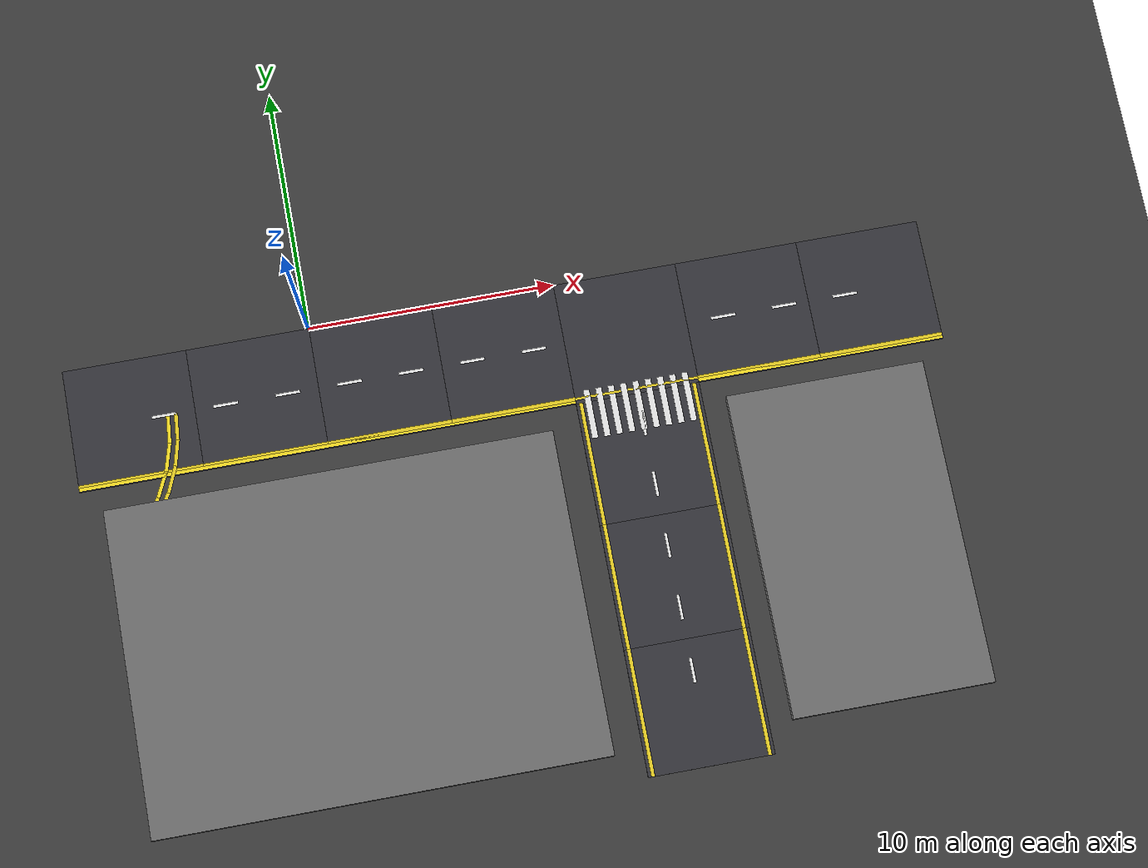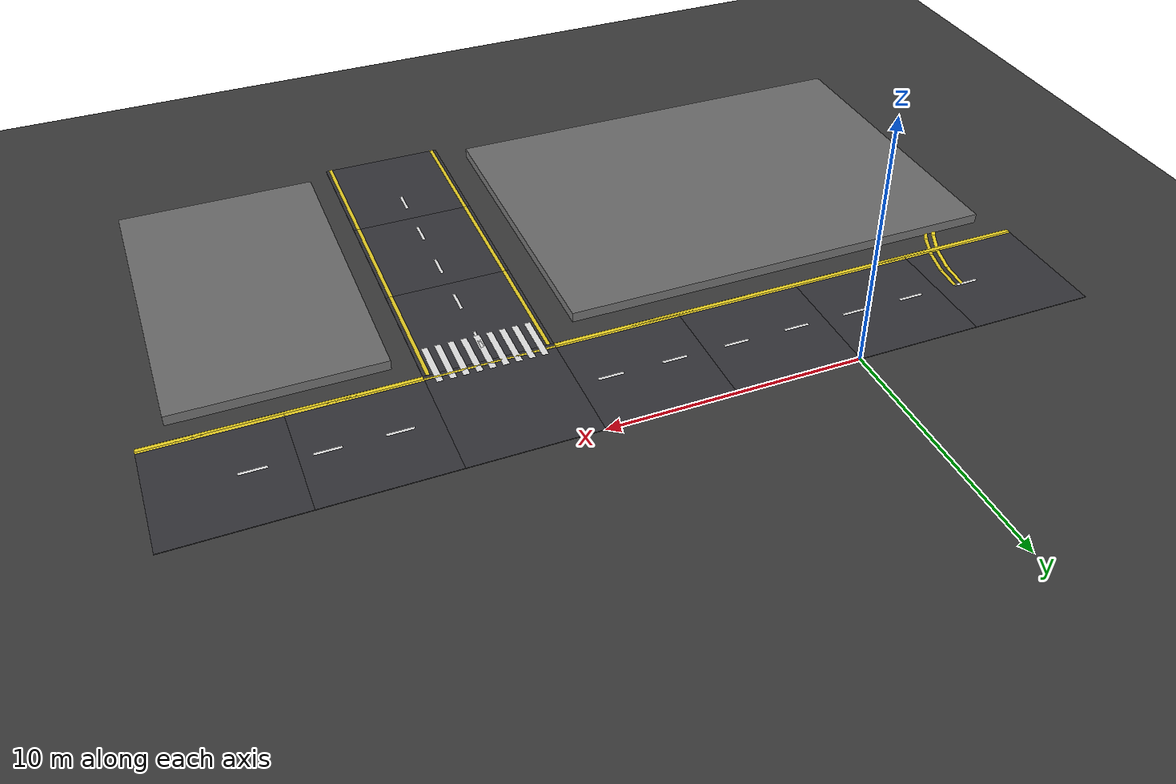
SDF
<sdf version="1.7">
 <world name="compact_city">
  <model name="ground_plane">
   <static>1</static>
   <pose>0 0 0.01 0 -0 0</pose>
   <link name="link">
    <collision name="collision">
     <geometry><plane><normal>0 0 1</normal><size>200 200</size></plane></geometry>
    </collision>
    <visual name="visual">
     <geometry><plane><normal>0 0 1</normal><size>200 200</size></plane></geometry>
     <material>
      <ambient>0.2 0.2 0.2 1</ambient>
      <diffuse>0.25 0.25 0.25 1</diffuse>
      <specular>0.1 0.1 0.1 1</specular>
     </material>
    </visual>
   </link>
  </model>
  <model name="road_tile_48">
   <static>1</static>
   <pose>-7.5 -2.5 0.015 0 -0 0</pose>
   <link name="link">
    <collision name="collision"><geometry><box><size>5 5 0.03</size></box></geometry></collision>
    <visual name="visual">
     <geometry><box><size>5 5 0.03</size></box></geometry>
     <material>
      <ambient>0.18 0.18 0.2 1</ambient>
      <diffuse>0.22 0.22 0.24 1</diffuse>
      <specular>0.1 0.1 0.1 1</specular>
     </material>
    </visual>
   </link>
  </model>
  <model name="road_tile_49">
   <static>1</static>
   <pose>-2.5 -2.5 0.015 0 -0 0</pose>
   <link name="link">
    <collision name="collision"><geometry><box><size>5 5 0.03</size></box></geometry></collision>
    <visual name="visual">
     <geometry><box><size>5 5 0.03</size></box></geometry>
     <material>
      <ambient>0.18 0.18 0.2 1</ambient>
      <diffuse>0.22 0.22 0.24 1</diffuse>
      <specular>0.1 0.1 0.1 1</specular>
     </material>
    </visual>
   </link>
  </model>
  <model name="road_tile_50">
   <static>1</static>
   <pose>2.5 -2.5 0.015 0 -0 0</pose>
   <link name="link">
    <collision name="collision"><geometry><box><size>5 5 0.03</size></box></geometry></collision>
    <visual name="visual">
     <geometry><box><size>5 5 0.03</size></box></geometry>
     <material>
      <ambient>0.18 0.18 0.2 1</ambient>
      <diffuse>0.22 0.22 0.24 1</diffuse>
      <specular>0.1 0.1 0.1 1</specular>
     </material>
    </visual>
   </link>
  </model>
  <model name="road_tile_51">
   <static>1</static>
   <pose>7.5 -2.5 0.015 0 -0 0</pose>
   <link name="link">
    <collision name="collision"><geometry><box><size>5 5 0.03</size></box></geometry></collision>
    <visual name="visual">
     <geometry><box><size>5 5 0.03</size></box></geometry>
     <material>
      <ambient>0.18 0.18 0.2 1</ambient>
      <diffuse>0.22 0.22 0.24 1</diffuse>
      <specular>0.1 0.1 0.1 1</specular>
     </material>
    </visual>
   </link>
  </model>
  <model name="road_tile_52">
   <static>1</static>
   <pose>12.5 -2.5 0.015 0 -0 0</pose>
   <link name="link">
    <collision name="collision"><geometry><box><size>5 5 0.03</size></box></geometry></collision>
    <visual name="visual">
     <geometry><box><size>5 5 0.03</size></box></geometry>
     <material>
      <ambient>0.18 0.18 0.2 1</ambient>
      <diffuse>0.22 0.22 0.24 1</diffuse>
      <specular>0.1 0.1 0.1 1</specular>
     </material>
    </visual>
   </link>
  </model>
  <model name="road_tile_53">
   <static>1</static>
   <pose>17.5 -2.5 0.015 0 -0 0</pose>
   <link name="link">
    <collision name="collision"><geometry><box><size>5 5 0.03</size></box></geometry></collision>
    <visual name="visual">
     <geometry><box><size>5 5 0.03</size></box></geometry>
     <material>
      <ambient>0.18 0.18 0.2 1</ambient>
      <diffuse>0.22 0.22 0.24 1</diffuse>
      <specular>0.1 0.1 0.1 1</specular>
     </material>
    </visual>
   </link>
  </model>
  <model name="road_tile_54">
   <static>1</static>
   <pose>22.5 -2.5 0.015 0 -0 0</pose>
   <link name="link">
    <collision name="collision"><geometry><box><size>5 5 0.03</size></box></geometry></collision>
    <visual name="visual">
     <geometry><box><size>5 5 0.03</size></box></geometry>
     <material>
      <ambient>0.18 0.18 0.2 1</ambient>
      <diffuse>0.22 0.22 0.24 1</diffuse>
      <specular>0.1 0.1 0.1 1</specular>
     </material>
    </visual>
   </link>
  </model>
  <model name="road_tile_58">
   <static>1</static>
   <pose>12.5 -7.5 0.015 0 -0 1.5708</pose>
   <link name="link">
    <collision name="collision"><geometry><box><size>5 5 0.03</size></box></geometry></collision>
    <visual name="visual">
     <geometry><box><size>5 5 0.03</size></box></geometry>
     <material>
      <ambient>0.18 0.18 0.2 1</ambient>
      <diffuse>0.22 0.22 0.24 1</diffuse>
      <specular>0.1 0.1 0.1 1</specular>
     </material>
    </visual>
   </link>
  </model>
  <model name="road_tile_62">
   <static>1</static>
   <pose>12.5 -12.5 0.015 0 -0 1.5708</pose>
   <link name="link">
    <collision name="collision"><geometry><box><size>5 5 0.03</size></box></geometry></collision>
    <visual name="visual">
     <geometry><box><size>5 5 0.03</size></box></geometry>
     <material>
      <ambient>0.18 0.18 0.2 1</ambient>
      <diffuse>0.22 0.22 0.24 1</diffuse>
      <specular>0.1 0.1 0.1 1</specular>
     </material>
    </visual>
   </link>
  </model>
  <model name="road_tile_66">
   <static>1</static>
   <pose>12.5 -17.5 0.015 0 -0 1.5708</pose>
   <link name="link">
    <collision name="collision"><geometry><box><size>5 5 0.03</size></box></geometry></collision>
    <visual name="visual">
     <geometry><box><size>5 5 0.03</size></box></geometry>
     <material>
      <ambient>0.18 0.18 0.2 1</ambient>
      <diffuse>0.22 0.22 0.24 1</diffuse>
      <specular>0.1 0.1 0.1 1</specular>
     </material>
    </visual>
   </link>
  </model>
  <model name="sidewalk_area_bot_center">
   <static>1</static>
   <pose>-0.126082 -12.4616 0.2 0 -0 0</pose>
   <link name="link">
    <collision name="collision"><geometry><box><size>18 13 0.4</size></box></geometry></collision>
    <visual name="visual">
     <geometry><box><size>18 13 0.4</size></box></geometry>
     <material>
      <ambient>0.4 0.4 0.4 1</ambient>
      <diffuse>0.45 0.45 0.45 1</diffuse>
      <specular>0.2 0.2 0.2 1</specular>
     </material>
    </visual>
   </link>
  </model>
  <model name="sidewalk_area_bot_right">
   <static>1</static>
   <pose>19.9122 -12.3359 0.2 0 -0 0</pose>
   <link name="link">
    <collision name="collision"><geometry><box><size>8 13 0.4</size></box></geometry></collision>
    <visual name="visual">
     <geometry><box><size>8 13 0.4</size></box></geometry>
     <material>
      <ambient>0.4 0.4 0.4 1</ambient>
      <diffuse>0.45 0.45 0.45 1</diffuse>
      <specular>0.2 0.2 0.2 1</specular>
     </material>
    </visual>
   </link>
  </model>
  <model name="el_181">
   <static>1</static>
   <pose>-7.5 -4.8 0.038 0 -0 0</pose>
   <link name="link">
    <visual name="v">
     <geometry><box><size>5 0.15 0.002</size></box></geometry>
     <material><ambient>0.9 0.8 0.1 1</ambient><diffuse>0.95 0.85 0.15 1</diffuse></material>
    </visual>
   </link>
  </model>
  <model name="el_189">
   <static>1</static>
   <pose>-2.5 -4.8 0.038 0 -0 0</pose>
   <link name="link">
    <visual name="v">
     <geometry><box><size>5 0.15 0.002</size></box></geometry>
     <material><ambient>0.9 0.8 0.1 1</ambient><diffuse>0.95 0.85 0.15 1</diffuse></material>
    </visual>
   </link>
  </model>
  <model name="el_199">
   <static>1</static>
   <pose>2.5 -4.8 0.038 0 -0 0</pose>
   <link name="link">
    <visual name="v">
     <geometry><box><size>5 0.15 0.002</size></box></geometry>
     <material><ambient>0.9 0.8 0.1 1</ambient><diffuse>0.95 0.85 0.15 1</diffuse></material>
    </visual>
   </link>
  </model>
  <model name="el_207">
   <static>1</static>
   <pose>7.5 -4.8 0.038 0 -0 0</pose>
   <link name="link">
    <visual name="v">
     <geometry><box><size>5 0.15 0.002</size></box></geometry>
     <material><ambient>0.9 0.8 0.1 1</ambient><diffuse>0.95 0.85 0.15 1</diffuse></material>
    </visual>
   </link>
  </model>
  <model name="el_213">
   <static>1</static>
   <pose>10.2 -17.5 0.038 0 -0 1.5708</pose>
   <link name="link">
    <visual name="v">
     <geometry><box><size>5 0.15 0.002</size></box></geometry>
     <material><ambient>0.9 0.8 0.1 1</ambient><diffuse>0.95 0.85 0.15 1</diffuse></material>
    </visual>
   </link>
  </model>
  <model name="el_214">
   <static>1</static>
   <pose>14.8 -17.5 0.038 0 -0 1.5708</pose>
   <link name="link">
    <visual name="v">
     <geometry><box><size>5 0.15 0.002</size></box></geometry>
     <material><ambient>0.9 0.8 0.1 1</ambient><diffuse>0.95 0.85 0.15 1</diffuse></material>
    </visual>
   </link>
  </model>
  <model name="el_215">
   <static>1</static>
   <pose>10.2 -12.5 0.038 0 -0 1.5708</pose>
   <link name="link">
    <visual name="v">
     <geometry><box><size>5 0.15 0.002</size></box></geometry>
     <material><ambient>0.9 0.8 0.1 1</ambient><diffuse>0.95 0.85 0.15 1</diffuse></material>
    </visual>
   </link>
  </model>
  <model name="el_216">
   <static>1</static>
   <pose>14.8 -12.5 0.038 0 -0 1.5708</pose>
   <link name="link">
    <visual name="v">
     <geometry><box><size>5 0.15 0.002</size></box></geometry>
     <material><ambient>0.9 0.8 0.1 1</ambient><diffuse>0.95 0.85 0.15 1</diffuse></material>
    </visual>
   </link>
  </model>
  <model name="el_217">
   <static>1</static>
   <pose>10.2 -7.5 0.038 0 -0 1.5708</pose>
   <link name="link">
    <visual name="v">
     <geometry><box><size>5 0.15 0.002</size></box></geometry>
     <material><ambient>0.9 0.8 0.1 1</ambient><diffuse>0.95 0.85 0.15 1</diffuse></material>
    </visual>
   </link>
  </model>
  <model name="el_218">
   <static>1</static>
   <pose>14.8 -7.5 0.038 0 -0 1.5708</pose>
   <link name="link">
    <visual name="v">
     <geometry><box><size>5 0.15 0.002</size></box></geometry>
     <material><ambient>0.9 0.8 0.1 1</ambient><diffuse>0.95 0.85 0.15 1</diffuse></material>
    </visual>
   </link>
  </model>
  <model name="el_231">
   <static>1</static>
   <pose>17.5 -4.8 0.038 0 -0 0</pose>
   <link name="link">
    <visual name="v">
     <geometry><box><size>5 0.15 0.002</size></box></geometry>
     <material><ambient>0.9 0.8 0.1 1</ambient><diffuse>0.95 0.85 0.15 1</diffuse></material>
    </visual>
   </link>
  </model>
  <model name="el_239">
   <static>1</static>
   <pose>22.5 -4.8 0.038 0 -0 0</pose>
   <link name="link">
    <visual name="v">
     <geometry><box><size>5 0.15 0.002</size></box></geometry>
     <material><ambient>0.9 0.8 0.1 1</ambient><diffuse>0.95 0.85 0.15 1</diffuse></material>
    </visual>
   </link>
  </model>
  <model name="ld_34">
   <static>1</static>
   <pose>12.5000 -16.2500 0.038 0 -0 1.5708</pose>
   <link name="link">
    <visual name="v">
     <geometry><box><size>1 0.12 0.002</size></box></geometry>
     <material><ambient>1 1 1 1</ambient><diffuse>0.95 0.95 0.95 1</diffuse></material>
    </visual>
   </link>
  </model>
  <model name="ld_35">
   <static>1</static>
   <pose>12.5000 -13.7500 0.038 0 -0 1.5708</pose>
   <link name="link">
    <visual name="v">
     <geometry><box><size>1 0.12 0.002</size></box></geometry>
     <material><ambient>1 1 1 1</ambient><diffuse>0.95 0.95 0.95 1</diffuse></material>
    </visual>
   </link>
  </model>
  <model name="ld_36">
   <static>1</static>
   <pose>12.5000 -11.2500 0.038 0 -0 1.5708</pose>
   <link name="link">
    <visual name="v">
     <geometry><box><size>1 0.12 0.002</size></box></geometry>
     <material><ambient>1 1 1 1</ambient><diffuse>0.95 0.95 0.95 1</diffuse></material>
    </visual>
   </link>
  </model>
  <model name="ld_37">
   <static>1</static>
   <pose>12.5000 -8.7500 0.038 0 -0 1.5708</pose>
   <link name="link">
    <visual name="v">
     <geometry><box><size>1 0.12 0.002</size></box></geometry>
     <material><ambient>1 1 1 1</ambient><diffuse>0.95 0.95 0.95 1</diffuse></material>
    </visual>
   </link>
  </model>
  <model name="ld_38">
   <static>1</static>
   <pose>12.5000 -6.2500 0.038 0 -0 1.5708</pose>
   <link name="link">
    <visual name="v">
     <geometry><box><size>1 0.12 0.002</size></box></geometry>
     <material><ambient>1 1 1 1</ambient><diffuse>0.95 0.95 0.95 1</diffuse></material>
    </visual>
   </link>
  </model>
  <model name="ld_106">
   <static>1</static>
   <pose>-6.2500 -2.5000 0.038 0 0 0</pose>
   <link name="link">
    <visual name="v">
     <geometry><box><size>1 0.12 0.002</size></box></geometry>
     <material><ambient>1 1 1 1</ambient><diffuse>0.95 0.95 0.95 1</diffuse></material>
    </visual>
   </link>
  </model>
  <model name="ld_107">
   <static>1</static>
   <pose>-3.7500 -2.5000 0.038 0 0 0</pose>
   <link name="link">
    <visual name="v">
     <geometry><box><size>1 0.12 0.002</size></box></geometry>
     <material><ambient>1 1 1 1</ambient><diffuse>0.95 0.95 0.95 1</diffuse></material>
    </visual>
   </link>
  </model>
  <model name="ld_108">
   <static>1</static>
   <pose>-1.2500 -2.5000 0.038 0 0 0</pose>
   <link name="link">
    <visual name="v">
     <geometry><box><size>1 0.12 0.002</size></box></geometry>
     <material><ambient>1 1 1 1</ambient><diffuse>0.95 0.95 0.95 1</diffuse></material>
    </visual>
   </link>
  </model>
  <model name="ld_109">
   <static>1</static>
   <pose>1.2500 -2.5000 0.038 0 0 0</pose>
   <link name="link">
    <visual name="v">
     <geometry><box><size>1 0.12 0.002</size></box></geometry>
     <material><ambient>1 1 1 1</ambient><diffuse>0.95 0.95 0.95 1</diffuse></material>
    </visual>
   </link>
  </model>
  <model name="ld_110">
   <static>1</static>
   <pose>3.7500 -2.5000 0.038 0 0 0</pose>
   <link name="link">
    <visual name="v">
     <geometry><box><size>1 0.12 0.002</size></box></geometry>
     <material><ambient>1 1 1 1</ambient><diffuse>0.95 0.95 0.95 1</diffuse></material>
    </visual>
   </link>
  </model>
  <model name="ld_111">
   <static>1</static>
   <pose>6.2500 -2.5000 0.038 0 0 0</pose>
   <link name="link">
    <visual name="v">
     <geometry><box><size>1 0.12 0.002</size></box></geometry>
     <material><ambient>1 1 1 1</ambient><diffuse>0.95 0.95 0.95 1</diffuse></material>
    </visual>
   </link>
  </model>
  <model name="ld_112">
   <static>1</static>
   <pose>8.7500 -2.5000 0.038 0 0 0</pose>
   <link name="link">
    <visual name="v">
     <geometry><box><size>1 0.12 0.002</size></box></geometry>
     <material><ambient>1 1 1 1</ambient><diffuse>0.95 0.95 0.95 1</diffuse></material>
    </visual>
   </link>
  </model>
  <model name="ld_113">
   <static>1</static>
   <pose>16.5000 -2.5000 0.038 0 0 0</pose>
   <link name="link">
    <visual name="v">
     <geometry><box><size>1 0.12 0.002</size></box></geometry>
     <material><ambient>1 1 1 1</ambient><diffuse>0.95 0.95 0.95 1</diffuse></material>
    </visual>
   </link>
  </model>
  <model name="ld_114">
   <static>1</static>
   <pose>19.0000 -2.5000 0.038 0 0 0</pose>
   <link name="link">
    <visual name="v">
     <geometry><box><size>1 0.12 0.002</size></box></geometry>
     <material><ambient>1 1 1 1</ambient><diffuse>0.95 0.95 0.95 1</diffuse></material>
    </visual>
   </link>
  </model>
  <model name="ld_115">
   <static>1</static>
   <pose>21.5000 -2.5000 0.038 0 0 0</pose>
   <link name="link">
    <visual name="v">
     <geometry><box><size>1 0.12 0.002</size></box></geometry>
     <material><ambient>1 1 1 1</ambient><diffuse>0.95 0.95 0.95 1</diffuse></material>
    </visual>
   </link>
  </model>
  <model name="ie_319">
   <static>1</static>
   <pose>12.5 -4.8 0.038 0 -0 0</pose>
   <link name="link">
    <visual name="v">
     <geometry><box><size>5 0.1 0.002</size></box></geometry>
     <material><ambient>0.9 0.8 0.1 1</ambient><diffuse>0.95 0.85 0.15 1</diffuse></material>
    </visual>
   </link>
  </model>
  <model name="ro_709">
   <static>1</static>
   <pose>-7.4192 -6.9362 0.038 0 -0 0.863915</pose>
   <link name="link">
    <visual name="v">
     <geometry><box><size>1.1204 0.15 0.002</size></box></geometry>
     <material><ambient>0.9 0.8 0.1 1</ambient><diffuse>0.95 0.85 0.15 1</diffuse></material>
    </visual>
   </link>
  </model>
  <model name="ro_710">
   <static>1</static>
   <pose>-6.792 -6.073 0.038 0 -0 1.02102</pose>
   <link name="link">
    <visual name="v">
     <geometry><box><size>1.1204 0.15 0.002</size></box></geometry>
     <material><ambient>0.9 0.8 0.1 1</ambient><diffuse>0.95 0.85 0.15 1</diffuse></material>
    </visual>
   </link>
  </model>
  <model name="ro_711">
   <static>1</static>
   <pose>-6.3076 -5.1222 0.038 0 -0 1.17812</pose>
   <link name="link">
    <visual name="v">
     <geometry><box><size>1.1204 0.15 0.002</size></box></geometry>
     <material><ambient>0.9 0.8 0.1 1</ambient><diffuse>0.95 0.85 0.15 1</diffuse></material>
    </visual>
   </link>
  </model>
  <model name="ro_712">
   <static>1</static>
   <pose>-5.9779 -4.1074 0.038 0 -0 1.33522</pose>
   <link name="link">
    <visual name="v">
     <geometry><box><size>1.1204 0.15 0.002</size></box></geometry>
     <material><ambient>0.9 0.8 0.1 1</ambient><diffuse>0.95 0.85 0.15 1</diffuse></material>
    </visual>
   </link>
  </model>
  <model name="ro_713">
   <static>1</static>
   <pose>-5.811 -3.0535 0.038 0 -0 1.49222</pose>
   <link name="link">
    <visual name="v">
     <geometry><box><size>1.1204 0.15 0.002</size></box></geometry>
     <material><ambient>0.9 0.8 0.1 1</ambient><diffuse>0.95 0.85 0.15 1</diffuse></material>
    </visual>
   </link>
  </model>
  <model name="edge_h_15">
   <static>1</static>
   <pose>0 -4.9 0.038 0 -0 0</pose>
   <link name="link">
    <visual name="visual">
     <geometry><box><size>20 0.15 0.002</size></box></geometry>
     <material><ambient>0.95 0.85 0.1 1</ambient><diffuse>1 0.9 0.15 1</diffuse></material>
    </visual>
   </link>
  </model>
  <model name="edge_h_17">
   <static>1</static>
   <pose>20 -4.9 0.038 0 -0 0</pose>
   <link name="link">
    <visual name="visual">
     <geometry><box><size>10 0.15 0.002</size></box></geometry>
     <material><ambient>0.95 0.85 0.1 1</ambient><diffuse>1 0.9 0.15 1</diffuse></material>
    </visual>
   </link>
  </model>
  <model name="ra_outer_569">
   <static>1</static>
   <pose>-7.2858 -6.2341 0.038 0 -0 0.9599</pose>
   <link name="link">
    <visual name="visual">
     <geometry><box><size>1.15302 0.15 0.002</size></box></geometry>
     <material><ambient>0.95 0.85 0.1 1</ambient><diffuse>1 0.9 0.15 1</diffuse></material>
    </visual>
   </link>
  </model>
  <model name="ra_outer_570">
   <static>1</static>
   <pose>-6.7214 -5.2566 0.038 0 -0 1.1345</pose>
   <link name="link">
    <visual name="visual">
     <geometry><box><size>1.15302 0.15 0.002</size></box></geometry>
     <material><ambient>0.95 0.85 0.1 1</ambient><diffuse>1 0.9 0.15 1</diffuse></material>
    </visual>
   </link>
  </model>
  <model name="ra_outer_571">
   <static>1</static>
   <pose>-6.3354 -4.1959 0.038 0 -0 1.309</pose>
   <link name="link">
    <visual name="visual">
     <geometry><box><size>1.15302 0.15 0.002</size></box></geometry>
     <material><ambient>0.95 0.85 0.1 1</ambient><diffuse>1 0.9 0.15 1</diffuse></material>
    </visual>
   </link>
  </model>
  <model name="ra_outer_572">
   <static>1</static>
   <pose>-6.1394 -3.0844 0.038 0 -0 1.4835</pose>
   <link name="link">
    <visual name="visual">
     <geometry><box><size>1.15302 0.15 0.002</size></box></geometry>
     <material><ambient>0.95 0.85 0.1 1</ambient><diffuse>1 0.9 0.15 1</diffuse></material>
    </visual>
   </link>
  </model>
  <model name="xwalk_618">
   <static>1</static>
   <pose>10.5 -5.5 0.038 0 -0 1.5708</pose>
   <link name="link">
    <visual name="visual">
     <geometry><box><size>2 0.25 0.002</size></box></geometry>
     <material><ambient>1 1 1 1</ambient><diffuse>0.95 0.95 0.95 1</diffuse></material>
    </visual>
   </link>
  </model>
  <model name="xwalk_619">
   <static>1</static>
   <pose>11 -5.5 0.038 0 -0 1.5708</pose>
   <link name="link">
    <visual name="visual">
     <geometry><box><size>2 0.25 0.002</size></box></geometry>
     <material><ambient>1 1 1 1</ambient><diffuse>0.95 0.95 0.95 1</diffuse></material>
    </visual>
   </link>
  </model>
  <model name="xwalk_620">
   <static>1</static>
   <pose>11.5 -5.5 0.038 0 -0 1.5708</pose>
   <link name="link">
    <visual name="visual">
     <geometry><box><size>2 0.25 0.002</size></box></geometry>
     <material><ambient>1 1 1 1</ambient><diffuse>0.95 0.95 0.95 1</diffuse></material>
    </visual>
   </link>
  </model>
  <model name="xwalk_621">
   <static>1</static>
   <pose>12 -5.5 0.038 0 -0 1.5708</pose>
   <link name="link">
    <visual name="visual">
     <geometry><box><size>2 0.25 0.002</size></box></geometry>
     <material><ambient>1 1 1 1</ambient><diffuse>0.95 0.95 0.95 1</diffuse></material>
    </visual>
   </link>
  </model>
  <model name="xwalk_622">
   <static>1</static>
   <pose>12.5 -5.5 0.038 0 -0 1.5708</pose>
   <link name="link">
    <visual name="visual">
     <geometry><box><size>2 0.25 0.002</size></box></geometry>
     <material><ambient>1 1 1 1</ambient><diffuse>0.95 0.95 0.95 1</diffuse></material>
    </visual>
   </link>
  </model>
  <model name="xwalk_623">
   <static>1</static>
   <pose>13 -5.5 0.038 0 -0 1.5708</pose>
   <link name="link">
    <visual name="visual">
     <geometry><box><size>2 0.25 0.002</size></box></geometry>
     <material><ambient>1 1 1 1</ambient><diffuse>0.95 0.95 0.95 1</diffuse></material>
    </visual>
   </link>
  </model>
  <model name="xwalk_624">
   <static>1</static>
   <pose>13.5 -5.5 0.038 0 -0 1.5708</pose>
   <link name="link">
    <visual name="visual">
     <geometry><box><size>2 0.25 0.002</size></box></geometry>
     <material><ambient>1 1 1 1</ambient><diffuse>0.95 0.95 0.95 1</diffuse></material>
    </visual>
   </link>
  </model>
  <model name="xwalk_625">
   <static>1</static>
   <pose>14 -5.5 0.038 0 -0 1.5708</pose>
   <link name="link">
    <visual name="visual">
     <geometry><box><size>2 0.25 0.002</size></box></geometry>
     <material><ambient>1 1 1 1</ambient><diffuse>0.95 0.95 0.95 1</diffuse></material>
    </visual>
   </link>
  </model>
  <model name="xwalk_626">
   <static>1</static>
   <pose>14.5 -5.5 0.038 0 -0 1.5708</pose>
   <link name="link">
    <visual name="visual">
     <geometry><box><size>2 0.25 0.002</size></box></geometry>
     <material><ambient>1 1 1 1</ambient><diffuse>0.95 0.95 0.95 1</diffuse></material>
    </visual>
   </link>
  </model>
 </world>
</sdf>
